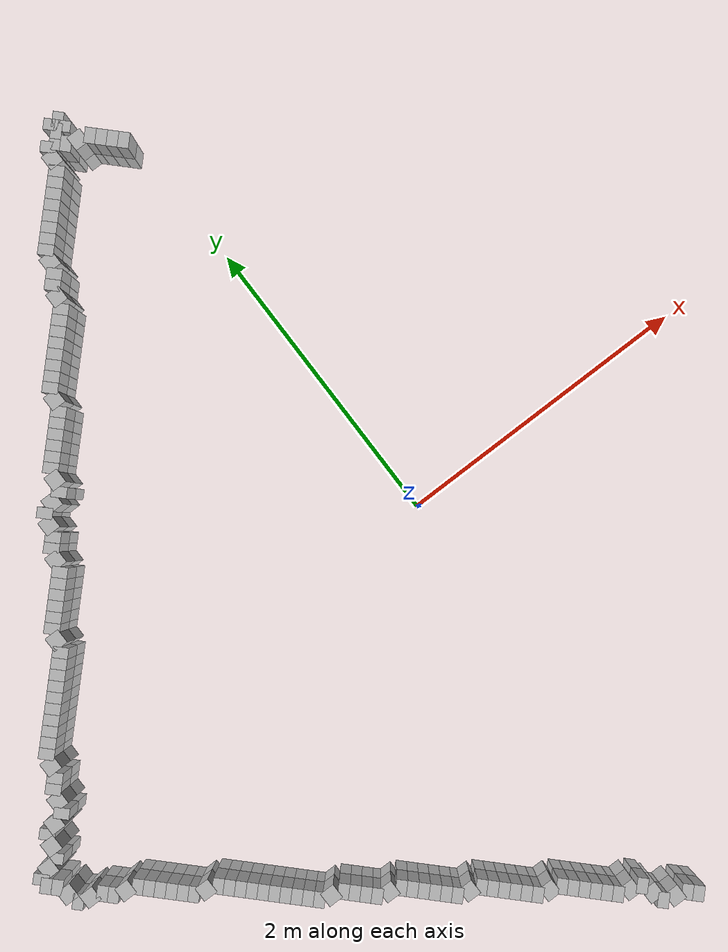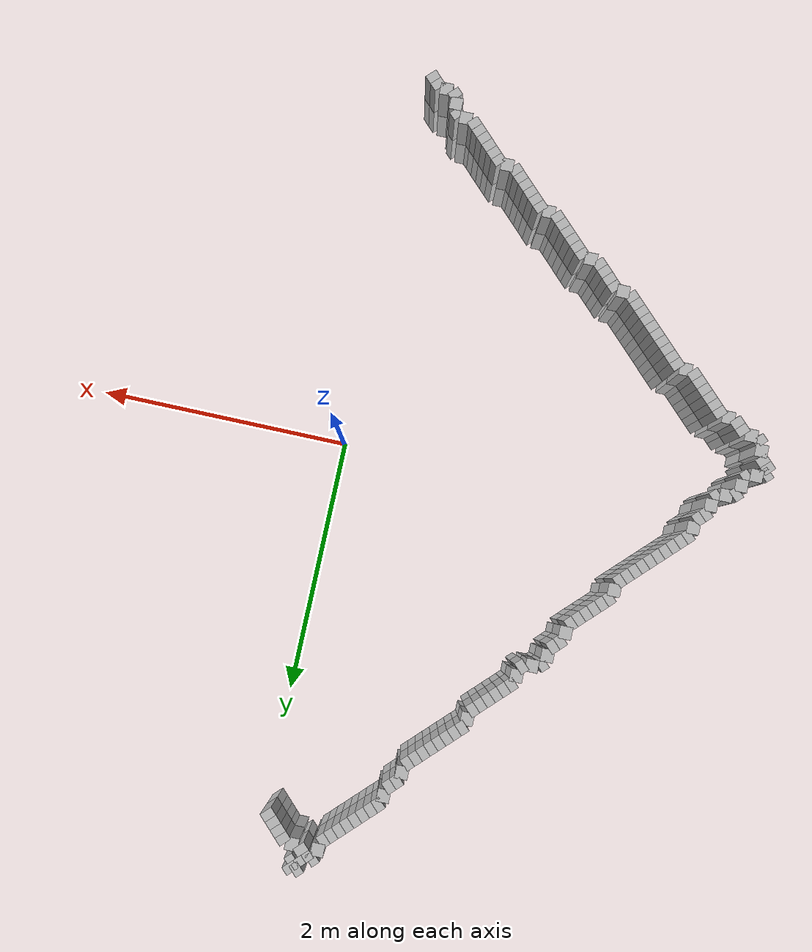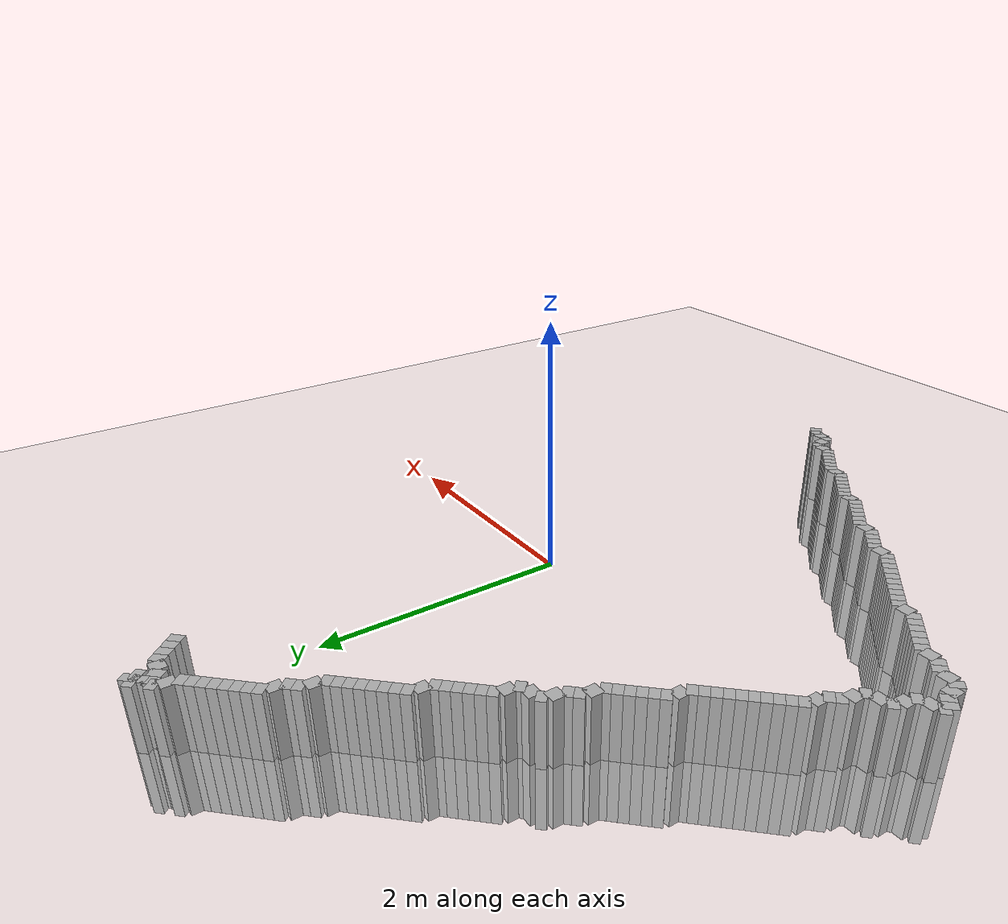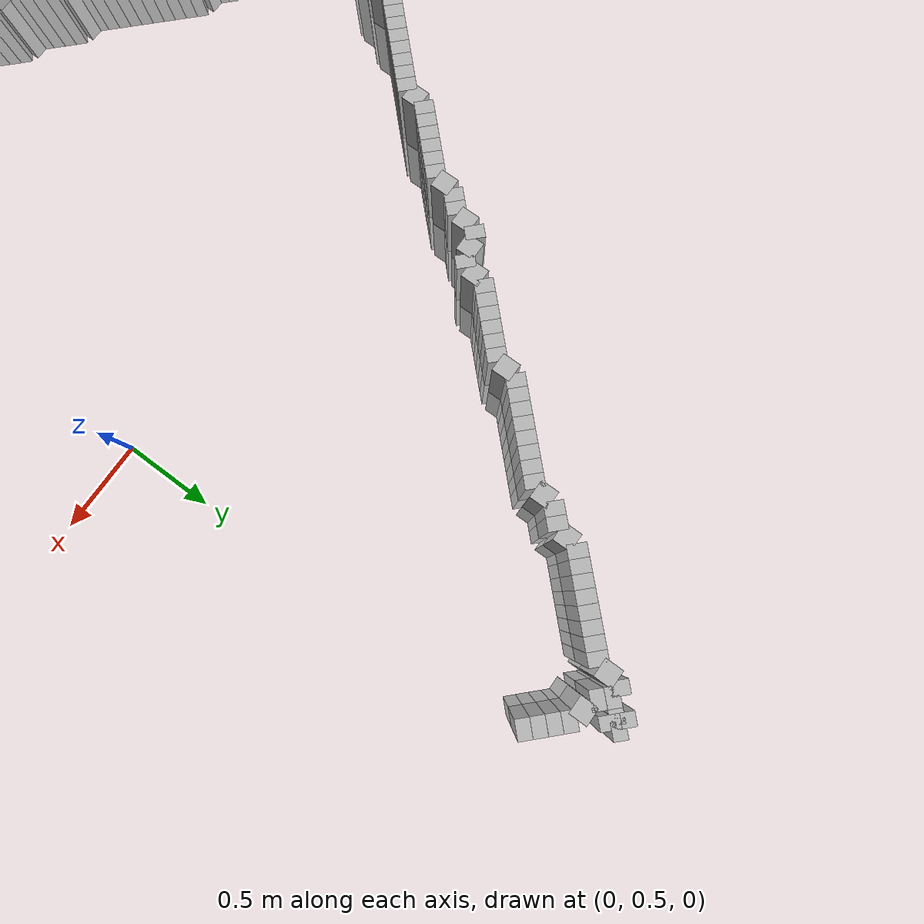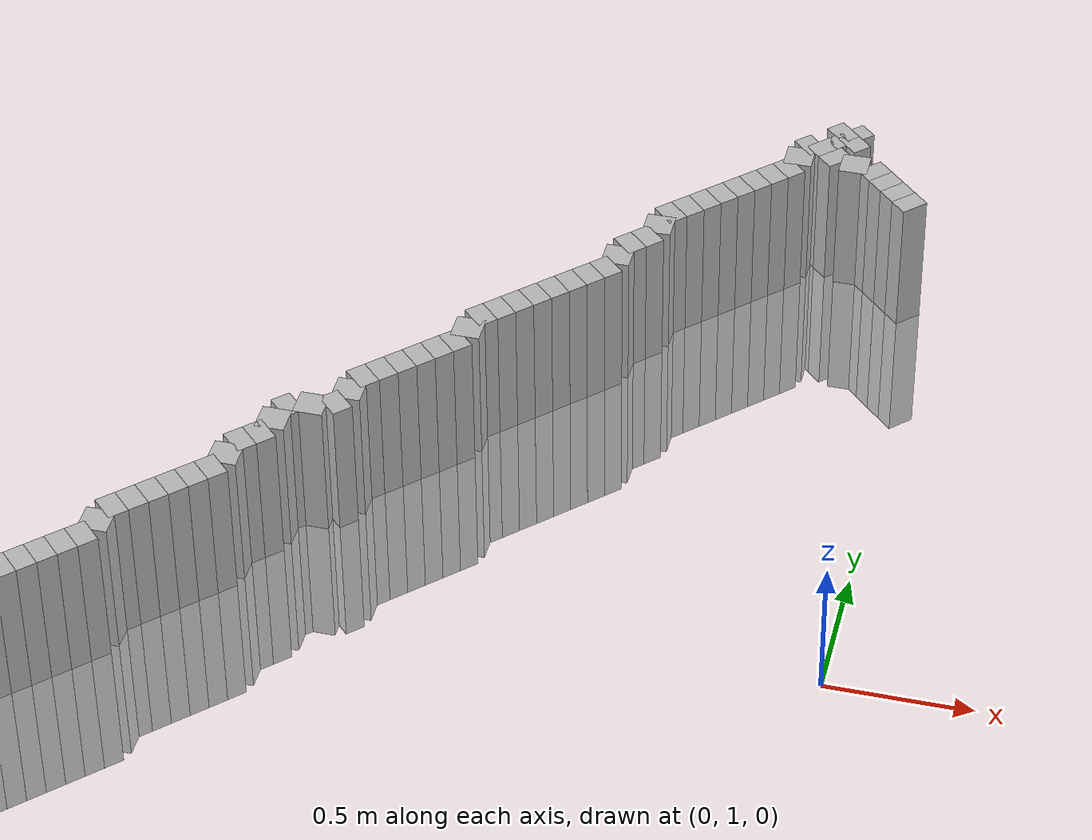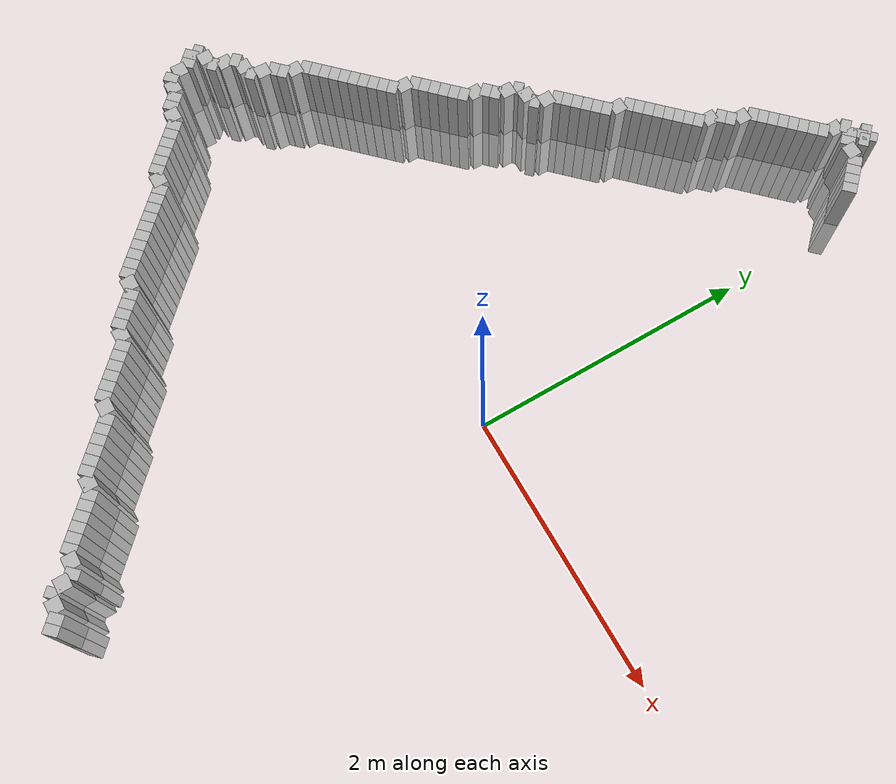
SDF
<sdf version="1.6">
 <world name="default">
  <include><uri>model://ground_plane</uri></include>
  <include><uri>model://sun</uri></include>
  <model name="wall_6">
   <static>true</static>
   <pose>-0.0750 -2.9750 0 0 0 2.3562</pose>
   <link name="link">
    <visual name="vis"><geometry><box><size>0.0707 0.10 1.00</size></box></geometry></visual>
    <collision name="col"><geometry><box><size>0.0707 0.10 1.00</size></box></geometry></collision>
   </link>
  </model>
  <model name="wall_7">
   <static>true</static>
   <pose>-0.1250 -2.9250 0 0 0 2.3562</pose>
   <link name="link">
    <visual name="vis"><geometry><box><size>0.0707 0.10 1.00</size></box></geometry></visual>
    <collision name="col"><geometry><box><size>0.0707 0.10 1.00</size></box></geometry></collision>
   </link>
  </model>
  <model name="wall_8">
   <static>true</static>
   <pose>-0.2000 -2.9000 0 0 0 3.1416</pose>
   <link name="link">
    <visual name="vis"><geometry><box><size>0.1000 0.10 1.00</size></box></geometry></visual>
    <collision name="col"><geometry><box><size>0.1000 0.10 1.00</size></box></geometry></collision>
   </link>
  </model>
  <model name="wall_9">
   <static>true</static>
   <pose>-0.2750 -2.8750 0 0 0 2.3562</pose>
   <link name="link">
    <visual name="vis"><geometry><box><size>0.0707 0.10 1.00</size></box></geometry></visual>
    <collision name="col"><geometry><box><size>0.0707 0.10 1.00</size></box></geometry></collision>
   </link>
  </model>
  <model name="wall_10">
   <static>true</static>
   <pose>-0.3000 -2.8000 0 0 0 1.5708</pose>
   <link name="link">
    <visual name="vis"><geometry><box><size>0.1000 0.10 1.00</size></box></geometry></visual>
    <collision name="col"><geometry><box><size>0.1000 0.10 1.00</size></box></geometry></collision>
   </link>
  </model>
  <model name="wall_11">
   <static>true</static>
   <pose>-0.3250 -2.7250 0 0 0 2.3562</pose>
   <link name="link">
    <visual name="vis"><geometry><box><size>0.0707 0.10 1.00</size></box></geometry></visual>
    <collision name="col"><geometry><box><size>0.0707 0.10 1.00</size></box></geometry></collision>
   </link>
  </model>
  <model name="wall_12">
   <static>true</static>
   <pose>-0.4000 -2.7000 0 0 0 3.1416</pose>
   <link name="link">
    <visual name="vis"><geometry><box><size>0.1000 0.10 1.00</size></box></geometry></visual>
    <collision name="col"><geometry><box><size>0.1000 0.10 1.00</size></box></geometry></collision>
   </link>
  </model>
  <model name="wall_13">
   <static>true</static>
   <pose>-0.4750 -2.6750 0 0 0 2.3562</pose>
   <link name="link">
    <visual name="vis"><geometry><box><size>0.0707 0.10 1.00</size></box></geometry></visual>
    <collision name="col"><geometry><box><size>0.0707 0.10 1.00</size></box></geometry></collision>
   </link>
  </model>
  <model name="wall_14">
   <static>true</static>
   <pose>-0.5250 -2.6250 0 0 0 2.3562</pose>
   <link name="link">
    <visual name="vis"><geometry><box><size>0.0707 0.10 1.00</size></box></geometry></visual>
    <collision name="col"><geometry><box><size>0.0707 0.10 1.00</size></box></geometry></collision>
   </link>
  </model>
  <model name="wall_15">
   <static>true</static>
   <pose>-0.5750 -2.5750 0 0 0 2.3562</pose>
   <link name="link">
    <visual name="vis"><geometry><box><size>0.0707 0.10 1.00</size></box></geometry></visual>
    <collision name="col"><geometry><box><size>0.0707 0.10 1.00</size></box></geometry></collision>
   </link>
  </model>
  <model name="wall_16">
   <static>true</static>
   <pose>-0.6250 -2.5250 0 0 0 2.3562</pose>
   <link name="link">
    <visual name="vis"><geometry><box><size>0.0707 0.10 1.00</size></box></geometry></visual>
    <collision name="col"><geometry><box><size>0.0707 0.10 1.00</size></box></geometry></collision>
   </link>
  </model>
  <model name="wall_17">
   <static>true</static>
   <pose>-0.6750 -2.4750 0 0 0 2.3562</pose>
   <link name="link">
    <visual name="vis"><geometry><box><size>0.0707 0.10 1.00</size></box></geometry></visual>
    <collision name="col"><geometry><box><size>0.0707 0.10 1.00</size></box></geometry></collision>
   </link>
  </model>
  <model name="wall_18">
   <static>true</static>
   <pose>-0.7250 -2.4250 0 0 0 2.3562</pose>
   <link name="link">
    <visual name="vis"><geometry><box><size>0.0707 0.10 1.00</size></box></geometry></visual>
    <collision name="col"><geometry><box><size>0.0707 0.10 1.00</size></box></geometry></collision>
   </link>
  </model>
  <model name="wall_19">
   <static>true</static>
   <pose>-0.8000 -2.4000 0 0 0 3.1416</pose>
   <link name="link">
    <visual name="vis"><geometry><box><size>0.1000 0.10 1.00</size></box></geometry></visual>
    <collision name="col"><geometry><box><size>0.1000 0.10 1.00</size></box></geometry></collision>
   </link>
  </model>
  <model name="wall_20">
   <static>true</static>
   <pose>-0.8750 -2.3750 0 0 0 2.3562</pose>
   <link name="link">
    <visual name="vis"><geometry><box><size>0.0707 0.10 1.00</size></box></geometry></visual>
    <collision name="col"><geometry><box><size>0.0707 0.10 1.00</size></box></geometry></collision>
   </link>
  </model>
  <model name="wall_21">
   <static>true</static>
   <pose>-0.9250 -2.3250 0 0 0 2.3562</pose>
   <link name="link">
    <visual name="vis"><geometry><box><size>0.0707 0.10 1.00</size></box></geometry></visual>
    <collision name="col"><geometry><box><size>0.0707 0.10 1.00</size></box></geometry></collision>
   </link>
  </model>
  <model name="wall_22">
   <static>true</static>
   <pose>-0.9750 -2.2750 0 0 0 2.3562</pose>
   <link name="link">
    <visual name="vis"><geometry><box><size>0.0707 0.10 1.00</size></box></geometry></visual>
    <collision name="col"><geometry><box><size>0.0707 0.10 1.00</size></box></geometry></collision>
   </link>
  </model>
  <model name="wall_23">
   <static>true</static>
   <pose>-1.0250 -2.2250 0 0 0 2.3562</pose>
   <link name="link">
    <visual name="vis"><geometry><box><size>0.0707 0.10 1.00</size></box></geometry></visual>
    <collision name="col"><geometry><box><size>0.0707 0.10 1.00</size></box></geometry></collision>
   </link>
  </model>
  <model name="wall_24">
   <static>true</static>
   <pose>-1.0750 -2.1750 0 0 0 2.3562</pose>
   <link name="link">
    <visual name="vis"><geometry><box><size>0.0707 0.10 1.00</size></box></geometry></visual>
    <collision name="col"><geometry><box><size>0.0707 0.10 1.00</size></box></geometry></collision>
   </link>
  </model>
  <model name="wall_25">
   <static>true</static>
   <pose>-1.1250 -2.1250 0 0 0 2.3562</pose>
   <link name="link">
    <visual name="vis"><geometry><box><size>0.0707 0.10 1.00</size></box></geometry></visual>
    <collision name="col"><geometry><box><size>0.0707 0.10 1.00</size></box></geometry></collision>
   </link>
  </model>
  <model name="wall_26">
   <static>true</static>
   <pose>-1.2000 -2.1000 0 0 0 3.1416</pose>
   <link name="link">
    <visual name="vis"><geometry><box><size>0.1000 0.10 1.00</size></box></geometry></visual>
    <collision name="col"><geometry><box><size>0.1000 0.10 1.00</size></box></geometry></collision>
   </link>
  </model>
  <model name="wall_27">
   <static>true</static>
   <pose>-1.2750 -2.0750 0 0 0 2.3562</pose>
   <link name="link">
    <visual name="vis"><geometry><box><size>0.0707 0.10 1.00</size></box></geometry></visual>
    <collision name="col"><geometry><box><size>0.0707 0.10 1.00</size></box></geometry></collision>
   </link>
  </model>
  <model name="wall_28">
   <static>true</static>
   <pose>-1.3250 -2.0250 0 0 0 2.3562</pose>
   <link name="link">
    <visual name="vis"><geometry><box><size>0.0707 0.10 1.00</size></box></geometry></visual>
    <collision name="col"><geometry><box><size>0.0707 0.10 1.00</size></box></geometry></collision>
   </link>
  </model>
  <model name="wall_29">
   <static>true</static>
   <pose>-1.3750 -1.9750 0 0 0 2.3562</pose>
   <link name="link">
    <visual name="vis"><geometry><box><size>0.0707 0.10 1.00</size></box></geometry></visual>
    <collision name="col"><geometry><box><size>0.0707 0.10 1.00</size></box></geometry></collision>
   </link>
  </model>
  <model name="wall_30">
   <static>true</static>
   <pose>-1.4250 -1.9250 0 0 0 2.3562</pose>
   <link name="link">
    <visual name="vis"><geometry><box><size>0.0707 0.10 1.00</size></box></geometry></visual>
    <collision name="col"><geometry><box><size>0.0707 0.10 1.00</size></box></geometry></collision>
   </link>
  </model>
  <model name="wall_31">
   <static>true</static>
   <pose>-1.4750 -1.8750 0 0 0 2.3562</pose>
   <link name="link">
    <visual name="vis"><geometry><box><size>0.0707 0.10 1.00</size></box></geometry></visual>
    <collision name="col"><geometry><box><size>0.0707 0.10 1.00</size></box></geometry></collision>
   </link>
  </model>
  <model name="wall_32">
   <static>true</static>
   <pose>-1.5250 -1.8250 0 0 0 2.3562</pose>
   <link name="link">
    <visual name="vis"><geometry><box><size>0.0707 0.10 1.00</size></box></geometry></visual>
    <collision name="col"><geometry><box><size>0.0707 0.10 1.00</size></box></geometry></collision>
   </link>
  </model>
  <model name="wall_33">
   <static>true</static>
   <pose>-1.6000 -1.8000 0 0 0 3.1416</pose>
   <link name="link">
    <visual name="vis"><geometry><box><size>0.1000 0.10 1.00</size></box></geometry></visual>
    <collision name="col"><geometry><box><size>0.1000 0.10 1.00</size></box></geometry></collision>
   </link>
  </model>
  <model name="wall_34">
   <static>true</static>
   <pose>-1.6750 -1.7750 0 0 0 2.3562</pose>
   <link name="link">
    <visual name="vis"><geometry><box><size>0.0707 0.10 1.00</size></box></geometry></visual>
    <collision name="col"><geometry><box><size>0.0707 0.10 1.00</size></box></geometry></collision>
   </link>
  </model>
  <model name="wall_35">
   <static>true</static>
   <pose>-1.7250 -1.7250 0 0 0 2.3562</pose>
   <link name="link">
    <visual name="vis"><geometry><box><size>0.0707 0.10 1.00</size></box></geometry></visual>
    <collision name="col"><geometry><box><size>0.0707 0.10 1.00</size></box></geometry></collision>
   </link>
  </model>
  <model name="wall_36">
   <static>true</static>
   <pose>-1.7750 -1.6750 0 0 0 2.3562</pose>
   <link name="link">
    <visual name="vis"><geometry><box><size>0.0707 0.10 1.00</size></box></geometry></visual>
    <collision name="col"><geometry><box><size>0.0707 0.10 1.00</size></box></geometry></collision>
   </link>
  </model>
  <model name="wall_37">
   <static>true</static>
   <pose>-1.8250 -1.6250 0 0 0 2.3562</pose>
   <link name="link">
    <visual name="vis"><geometry><box><size>0.0707 0.10 1.00</size></box></geometry></visual>
    <collision name="col"><geometry><box><size>0.0707 0.10 1.00</size></box></geometry></collision>
   </link>
  </model>
  <model name="wall_38">
   <static>true</static>
   <pose>-1.9000 -1.6000 0 0 0 3.1416</pose>
   <link name="link">
    <visual name="vis"><geometry><box><size>0.1000 0.10 1.00</size></box></geometry></visual>
    <collision name="col"><geometry><box><size>0.1000 0.10 1.00</size></box></geometry></collision>
   </link>
  </model>
  <model name="wall_39">
   <static>true</static>
   <pose>-1.9750 -1.5750 0 0 0 2.3562</pose>
   <link name="link">
    <visual name="vis"><geometry><box><size>0.0707 0.10 1.00</size></box></geometry></visual>
    <collision name="col"><geometry><box><size>0.0707 0.10 1.00</size></box></geometry></collision>
   </link>
  </model>
  <model name="wall_40">
   <static>true</static>
   <pose>-2.0250 -1.5250 0 0 0 2.3562</pose>
   <link name="link">
    <visual name="vis"><geometry><box><size>0.0707 0.10 1.00</size></box></geometry></visual>
    <collision name="col"><geometry><box><size>0.0707 0.10 1.00</size></box></geometry></collision>
   </link>
  </model>
  <model name="wall_41">
   <static>true</static>
   <pose>-2.0750 -1.4750 0 0 0 2.3562</pose>
   <link name="link">
    <visual name="vis"><geometry><box><size>0.0707 0.10 1.00</size></box></geometry></visual>
    <collision name="col"><geometry><box><size>0.0707 0.10 1.00</size></box></geometry></collision>
   </link>
  </model>
  <model name="wall_42">
   <static>true</static>
   <pose>-2.1250 -1.4250 0 0 0 2.3562</pose>
   <link name="link">
    <visual name="vis"><geometry><box><size>0.0707 0.10 1.00</size></box></geometry></visual>
    <collision name="col"><geometry><box><size>0.0707 0.10 1.00</size></box></geometry></collision>
   </link>
  </model>
  <model name="wall_43">
   <static>true</static>
   <pose>-2.1750 -1.3750 0 0 0 2.3562</pose>
   <link name="link">
    <visual name="vis"><geometry><box><size>0.0707 0.10 1.00</size></box></geometry></visual>
    <collision name="col"><geometry><box><size>0.0707 0.10 1.00</size></box></geometry></collision>
   </link>
  </model>
  <model name="wall_44">
   <static>true</static>
   <pose>-2.2250 -1.3250 0 0 0 2.3562</pose>
   <link name="link">
    <visual name="vis"><geometry><box><size>0.0707 0.10 1.00</size></box></geometry></visual>
    <collision name="col"><geometry><box><size>0.0707 0.10 1.00</size></box></geometry></collision>
   </link>
  </model>
  <model name="wall_45">
   <static>true</static>
   <pose>-2.2750 -1.2750 0 0 0 2.3562</pose>
   <link name="link">
    <visual name="vis"><geometry><box><size>0.0707 0.10 1.00</size></box></geometry></visual>
    <collision name="col"><geometry><box><size>0.0707 0.10 1.00</size></box></geometry></collision>
   </link>
  </model>
  <model name="wall_46">
   <static>true</static>
   <pose>-2.3250 -1.2250 0 0 0 2.3562</pose>
   <link name="link">
    <visual name="vis"><geometry><box><size>0.0707 0.10 1.00</size></box></geometry></visual>
    <collision name="col"><geometry><box><size>0.0707 0.10 1.00</size></box></geometry></collision>
   </link>
  </model>
  <model name="wall_47">
   <static>true</static>
   <pose>-2.3750 -1.1750 0 0 0 2.3562</pose>
   <link name="link">
    <visual name="vis"><geometry><box><size>0.0707 0.10 1.00</size></box></geometry></visual>
    <collision name="col"><geometry><box><size>0.0707 0.10 1.00</size></box></geometry></collision>
   </link>
  </model>
  <model name="wall_48">
   <static>true</static>
   <pose>-2.4250 -1.1250 0 0 0 2.3562</pose>
   <link name="link">
    <visual name="vis"><geometry><box><size>0.0707 0.10 1.00</size></box></geometry></visual>
    <collision name="col"><geometry><box><size>0.0707 0.10 1.00</size></box></geometry></collision>
   </link>
  </model>
  <model name="wall_49">
   <static>true</static>
   <pose>-2.5000 -1.1000 0 0 0 3.1416</pose>
   <link name="link">
    <visual name="vis"><geometry><box><size>0.1000 0.10 1.00</size></box></geometry></visual>
    <collision name="col"><geometry><box><size>0.1000 0.10 1.00</size></box></geometry></collision>
   </link>
  </model>
  <model name="wall_50">
   <static>true</static>
   <pose>-2.5750 -1.0750 0 0 0 2.3562</pose>
   <link name="link">
    <visual name="vis"><geometry><box><size>0.0707 0.10 1.00</size></box></geometry></visual>
    <collision name="col"><geometry><box><size>0.0707 0.10 1.00</size></box></geometry></collision>
   </link>
  </model>
  <model name="wall_51">
   <static>true</static>
   <pose>-2.6250 -1.0250 0 0 0 2.3562</pose>
   <link name="link">
    <visual name="vis"><geometry><box><size>0.0707 0.10 1.00</size></box></geometry></visual>
    <collision name="col"><geometry><box><size>0.0707 0.10 1.00</size></box></geometry></collision>
   </link>
  </model>
  <model name="wall_52">
   <static>true</static>
   <pose>-2.6750 -0.9750 0 0 0 2.3562</pose>
   <link name="link">
    <visual name="vis"><geometry><box><size>0.0707 0.10 1.00</size></box></geometry></visual>
    <collision name="col"><geometry><box><size>0.0707 0.10 1.00</size></box></geometry></collision>
   </link>
  </model>
  <model name="wall_53">
   <static>true</static>
   <pose>-2.7250 -0.9250 0 0 0 2.3562</pose>
   <link name="link">
    <visual name="vis"><geometry><box><size>0.0707 0.10 1.00</size></box></geometry></visual>
    <collision name="col"><geometry><box><size>0.0707 0.10 1.00</size></box></geometry></collision>
   </link>
  </model>
  <model name="wall_54">
   <static>true</static>
   <pose>-2.7750 -0.8750 0 0 0 2.3562</pose>
   <link name="link">
    <visual name="vis"><geometry><box><size>0.0707 0.10 1.00</size></box></geometry></visual>
    <collision name="col"><geometry><box><size>0.0707 0.10 1.00</size></box></geometry></collision>
   </link>
  </model>
  <model name="wall_55">
   <static>true</static>
   <pose>-2.8250 -0.8250 0 0 0 2.3562</pose>
   <link name="link">
    <visual name="vis"><geometry><box><size>0.0707 0.10 1.00</size></box></geometry></visual>
    <collision name="col"><geometry><box><size>0.0707 0.10 1.00</size></box></geometry></collision>
   </link>
  </model>
  <model name="wall_56">
   <static>true</static>
   <pose>-2.9000 -0.8000 0 0 0 3.1416</pose>
   <link name="link">
    <visual name="vis"><geometry><box><size>0.1000 0.10 1.00</size></box></geometry></visual>
    <collision name="col"><geometry><box><size>0.1000 0.10 1.00</size></box></geometry></collision>
   </link>
  </model>
  <model name="wall_57">
   <static>true</static>
   <pose>-2.9750 -0.7750 0 0 0 2.3562</pose>
   <link name="link">
    <visual name="vis"><geometry><box><size>0.0707 0.10 1.00</size></box></geometry></visual>
    <collision name="col"><geometry><box><size>0.0707 0.10 1.00</size></box></geometry></collision>
   </link>
  </model>
  <model name="wall_58">
   <static>true</static>
   <pose>-3.0250 -0.7250 0 0 0 2.3562</pose>
   <link name="link">
    <visual name="vis"><geometry><box><size>0.0707 0.10 1.00</size></box></geometry></visual>
    <collision name="col"><geometry><box><size>0.0707 0.10 1.00</size></box></geometry></collision>
   </link>
  </model>
  <model name="wall_59">
   <static>true</static>
   <pose>-3.1000 -0.7000 0 0 0 3.1416</pose>
   <link name="link">
    <visual name="vis"><geometry><box><size>0.1000 0.10 1.00</size></box></geometry></visual>
    <collision name="col"><geometry><box><size>0.1000 0.10 1.00</size></box></geometry></collision>
   </link>
  </model>
  <model name="wall_60">
   <static>true</static>
   <pose>-3.1750 -0.6750 0 0 0 2.3562</pose>
   <link name="link">
    <visual name="vis"><geometry><box><size>0.0707 0.10 1.00</size></box></geometry></visual>
    <collision name="col"><geometry><box><size>0.0707 0.10 1.00</size></box></geometry></collision>
   </link>
  </model>
  <model name="wall_61">
   <static>true</static>
   <pose>-3.2000 -0.6000 0 0 0 1.5708</pose>
   <link name="link">
    <visual name="vis"><geometry><box><size>0.1000 0.10 1.00</size></box></geometry></visual>
    <collision name="col"><geometry><box><size>0.1000 0.10 1.00</size></box></geometry></collision>
   </link>
  </model>
  <model name="wall_62">
   <static>true</static>
   <pose>-3.2250 -0.5250 0 0 0 2.3562</pose>
   <link name="link">
    <visual name="vis"><geometry><box><size>0.0707 0.10 1.00</size></box></geometry></visual>
    <collision name="col"><geometry><box><size>0.0707 0.10 1.00</size></box></geometry></collision>
   </link>
  </model>
  <model name="wall_63">
   <static>true</static>
   <pose>-3.2750 -0.4750 0 0 0 2.3562</pose>
   <link name="link">
    <visual name="vis"><geometry><box><size>0.0707 0.10 1.00</size></box></geometry></visual>
    <collision name="col"><geometry><box><size>0.0707 0.10 1.00</size></box></geometry></collision>
   </link>
  </model>
  <model name="wall_64">
   <static>true</static>
   <pose>-3.2750 -0.4250 0 0 0 0.7854</pose>
   <link name="link">
    <visual name="vis"><geometry><box><size>0.0707 0.10 1.00</size></box></geometry></visual>
    <collision name="col"><geometry><box><size>0.0707 0.10 1.00</size></box></geometry></collision>
   </link>
  </model>
  <model name="wall_65">
   <static>true</static>
   <pose>-3.2000 -0.4000 0 0 0 0.0000</pose>
   <link name="link">
    <visual name="vis"><geometry><box><size>0.1000 0.10 1.00</size></box></geometry></visual>
    <collision name="col"><geometry><box><size>0.1000 0.10 1.00</size></box></geometry></collision>
   </link>
  </model>
  <model name="wall_66">
   <static>true</static>
   <pose>-3.1250 -0.3750 0 0 0 0.7854</pose>
   <link name="link">
    <visual name="vis"><geometry><box><size>0.0707 0.10 1.00</size></box></geometry></visual>
    <collision name="col"><geometry><box><size>0.0707 0.10 1.00</size></box></geometry></collision>
   </link>
  </model>
  <model name="wall_67">
   <static>true</static>
   <pose>-3.1000 -0.3000 0 0 0 1.5708</pose>
   <link name="link">
    <visual name="vis"><geometry><box><size>0.1000 0.10 1.00</size></box></geometry></visual>
    <collision name="col"><geometry><box><size>0.1000 0.10 1.00</size></box></geometry></collision>
   </link>
  </model>
  <model name="wall_68">
   <static>true</static>
   <pose>-3.0750 -0.2250 0 0 0 0.7854</pose>
   <link name="link">
    <visual name="vis"><geometry><box><size>0.0707 0.10 1.00</size></box></geometry></visual>
    <collision name="col"><geometry><box><size>0.0707 0.10 1.00</size></box></geometry></collision>
   </link>
  </model>
  <model name="wall_69">
   <static>true</static>
   <pose>-3.0000 -0.2000 0 0 0 0.0000</pose>
   <link name="link">
    <visual name="vis"><geometry><box><size>0.1000 0.10 1.00</size></box></geometry></visual>
    <collision name="col"><geometry><box><size>0.1000 0.10 1.00</size></box></geometry></collision>
   </link>
  </model>
  <model name="wall_70">
   <static>true</static>
   <pose>-2.9250 -0.1750 0 0 0 0.7854</pose>
   <link name="link">
    <visual name="vis"><geometry><box><size>0.0707 0.10 1.00</size></box></geometry></visual>
    <collision name="col"><geometry><box><size>0.0707 0.10 1.00</size></box></geometry></collision>
   </link>
  </model>
  <model name="wall_71">
   <static>true</static>
   <pose>-2.9000 -0.1000 0 0 0 1.5708</pose>
   <link name="link">
    <visual name="vis"><geometry><box><size>0.1000 0.10 1.00</size></box></geometry></visual>
    <collision name="col"><geometry><box><size>0.1000 0.10 1.00</size></box></geometry></collision>
   </link>
  </model>
  <model name="wall_72">
   <static>true</static>
   <pose>-2.8750 -0.0250 0 0 0 0.7854</pose>
   <link name="link">
    <visual name="vis"><geometry><box><size>0.0707 0.10 1.00</size></box></geometry></visual>
    <collision name="col"><geometry><box><size>0.0707 0.10 1.00</size></box></geometry></collision>
   </link>
  </model>
  <model name="wall_73">
   <static>true</static>
   <pose>-2.8250 0.0250 0 0 0 0.7854</pose>
   <link name="link">
    <visual name="vis"><geometry><box><size>0.0707 0.10 1.00</size></box></geometry></visual>
    <collision name="col"><geometry><box><size>0.0707 0.10 1.00</size></box></geometry></collision>
   </link>
  </model>
  <model name="wall_74">
   <static>true</static>
   <pose>-2.8000 0.1000 0 0 0 1.5708</pose>
   <link name="link">
    <visual name="vis"><geometry><box><size>0.1000 0.10 1.00</size></box></geometry></visual>
    <collision name="col"><geometry><box><size>0.1000 0.10 1.00</size></box></geometry></collision>
   </link>
  </model>
  <model name="wall_75">
   <static>true</static>
   <pose>-2.7750 0.1750 0 0 0 0.7854</pose>
   <link name="link">
    <visual name="vis"><geometry><box><size>0.0707 0.10 1.00</size></box></geometry></visual>
    <collision name="col"><geometry><box><size>0.0707 0.10 1.00</size></box></geometry></collision>
   </link>
  </model>
  <model name="wall_76">
   <static>true</static>
   <pose>-2.7250 0.2250 0 0 0 0.7854</pose>
   <link name="link">
    <visual name="vis"><geometry><box><size>0.0707 0.10 1.00</size></box></geometry></visual>
    <collision name="col"><geometry><box><size>0.0707 0.10 1.00</size></box></geometry></collision>
   </link>
  </model>
  <model name="wall_77">
   <static>true</static>
   <pose>-2.6750 0.2750 0 0 0 0.7854</pose>
   <link name="link">
    <visual name="vis"><geometry><box><size>0.0707 0.10 1.00</size></box></geometry></visual>
    <collision name="col"><geometry><box><size>0.0707 0.10 1.00</size></box></geometry></collision>
   </link>
  </model>
  <model name="wall_78">
   <static>true</static>
   <pose>-2.6250 0.3250 0 0 0 0.7854</pose>
   <link name="link">
    <visual name="vis"><geometry><box><size>0.0707 0.10 1.00</size></box></geometry></visual>
    <collision name="col"><geometry><box><size>0.0707 0.10 1.00</size></box></geometry></collision>
   </link>
  </model>
  <model name="wall_79">
   <static>true</static>
   <pose>-2.5750 0.3750 0 0 0 0.7854</pose>
   <link name="link">
    <visual name="vis"><geometry><box><size>0.0707 0.10 1.00</size></box></geometry></visual>
    <collision name="col"><geometry><box><size>0.0707 0.10 1.00</size></box></geometry></collision>
   </link>
  </model>
  <model name="wall_80">
   <static>true</static>
   <pose>-2.5250 0.4250 0 0 0 0.7854</pose>
   <link name="link">
    <visual name="vis"><geometry><box><size>0.0707 0.10 1.00</size></box></geometry></visual>
    <collision name="col"><geometry><box><size>0.0707 0.10 1.00</size></box></geometry></collision>
   </link>
  </model>
  <model name="wall_81">
   <static>true</static>
   <pose>-2.4750 0.4750 0 0 0 0.7854</pose>
   <link name="link">
    <visual name="vis"><geometry><box><size>0.0707 0.10 1.00</size></box></geometry></visual>
    <collision name="col"><geometry><box><size>0.0707 0.10 1.00</size></box></geometry></collision>
   </link>
  </model>
  <model name="wall_82">
   <static>true</static>
   <pose>-2.4250 0.5250 0 0 0 0.7854</pose>
   <link name="link">
    <visual name="vis"><geometry><box><size>0.0707 0.10 1.00</size></box></geometry></visual>
    <collision name="col"><geometry><box><size>0.0707 0.10 1.00</size></box></geometry></collision>
   </link>
  </model>
  <model name="wall_83">
   <static>true</static>
   <pose>-2.3750 0.5750 0 0 0 0.7854</pose>
   <link name="link">
    <visual name="vis"><geometry><box><size>0.0707 0.10 1.00</size></box></geometry></visual>
    <collision name="col"><geometry><box><size>0.0707 0.10 1.00</size></box></geometry></collision>
   </link>
  </model>
  <model name="wall_84">
   <static>true</static>
   <pose>-2.3250 0.6250 0 0 0 0.7854</pose>
   <link name="link">
    <visual name="vis"><geometry><box><size>0.0707 0.10 1.00</size></box></geometry></visual>
    <collision name="col"><geometry><box><size>0.0707 0.10 1.00</size></box></geometry></collision>
   </link>
  </model>
  <model name="wall_85">
   <static>true</static>
   <pose>-2.3000 0.7000 0 0 0 1.5708</pose>
   <link name="link">
    <visual name="vis"><geometry><box><size>0.1000 0.10 1.00</size></box></geometry></visual>
    <collision name="col"><geometry><box><size>0.1000 0.10 1.00</size></box></geometry></collision>
   </link>
  </model>
  <model name="wall_86">
   <static>true</static>
   <pose>-2.2750 0.7750 0 0 0 0.7854</pose>
   <link name="link">
    <visual name="vis"><geometry><box><size>0.0707 0.10 1.00</size></box></geometry></visual>
    <collision name="col"><geometry><box><size>0.0707 0.10 1.00</size></box></geometry></collision>
   </link>
  </model>
  <model name="wall_87">
   <static>true</static>
   <pose>-2.2250 0.8250 0 0 0 0.7854</pose>
   <link name="link">
    <visual name="vis"><geometry><box><size>0.0707 0.10 1.00</size></box></geometry></visual>
    <collision name="col"><geometry><box><size>0.0707 0.10 1.00</size></box></geometry></collision>
   </link>
  </model>
  <model name="wall_88">
   <static>true</static>
   <pose>-2.1750 0.8750 0 0 0 0.7854</pose>
   <link name="link">
    <visual name="vis"><geometry><box><size>0.0707 0.10 1.00</size></box></geometry></visual>
    <collision name="col"><geometry><box><size>0.0707 0.10 1.00</size></box></geometry></collision>
   </link>
  </model>
  <model name="wall_89">
   <static>true</static>
   <pose>-2.1250 0.9250 0 0 0 0.7854</pose>
   <link name="link">
    <visual name="vis"><geometry><box><size>0.0707 0.10 1.00</size></box></geometry></visual>
    <collision name="col"><geometry><box><size>0.0707 0.10 1.00</size></box></geometry></collision>
   </link>
  </model>
  <model name="wall_90">
   <static>true</static>
   <pose>-2.0750 0.9750 0 0 0 0.7854</pose>
   <link name="link">
    <visual name="vis"><geometry><box><size>0.0707 0.10 1.00</size></box></geometry></visual>
    <collision name="col"><geometry><box><size>0.0707 0.10 1.00</size></box></geometry></collision>
   </link>
  </model>
  <model name="wall_91">
   <static>true</static>
   <pose>-2.0250 1.0250 0 0 0 0.7854</pose>
   <link name="link">
    <visual name="vis"><geometry><box><size>0.0707 0.10 1.00</size></box></geometry></visual>
    <collision name="col"><geometry><box><size>0.0707 0.10 1.00</size></box></geometry></collision>
   </link>
  </model>
  <model name="wall_92">
   <static>true</static>
   <pose>-2.0000 1.1000 0 0 0 1.5708</pose>
   <link name="link">
    <visual name="vis"><geometry><box><size>0.1000 0.10 1.00</size></box></geometry></visual>
    <collision name="col"><geometry><box><size>0.1000 0.10 1.00</size></box></geometry></collision>
   </link>
  </model>
  <model name="wall_93">
   <static>true</static>
   <pose>-1.9750 1.1750 0 0 0 0.7854</pose>
   <link name="link">
    <visual name="vis"><geometry><box><size>0.0707 0.10 1.00</size></box></geometry></visual>
    <collision name="col"><geometry><box><size>0.0707 0.10 1.00</size></box></geometry></collision>
   </link>
  </model>
  <model name="wall_94">
   <static>true</static>
   <pose>-1.9250 1.2250 0 0 0 0.7854</pose>
   <link name="link">
    <visual name="vis"><geometry><box><size>0.0707 0.10 1.00</size></box></geometry></visual>
    <collision name="col"><geometry><box><size>0.0707 0.10 1.00</size></box></geometry></collision>
   </link>
  </model>
  <model name="wall_95">
   <static>true</static>
   <pose>-1.9000 1.3000 0 0 0 1.5708</pose>
   <link name="link">
    <visual name="vis"><geometry><box><size>0.1000 0.10 1.00</size></box></geometry></visual>
    <collision name="col"><geometry><box><size>0.1000 0.10 1.00</size></box></geometry></collision>
   </link>
  </model>
  <model name="wall_96">
   <static>true</static>
   <pose>-1.8750 1.3750 0 0 0 0.7854</pose>
   <link name="link">
    <visual name="vis"><geometry><box><size>0.0707 0.10 1.00</size></box></geometry></visual>
    <collision name="col"><geometry><box><size>0.0707 0.10 1.00</size></box></geometry></collision>
   </link>
  </model>
  <model name="wall_97">
   <static>true</static>
   <pose>-1.8000 1.4000 0 0 0 0.0000</pose>
   <link name="link">
    <visual name="vis"><geometry><box><size>0.1000 0.10 1.00</size></box></geometry></visual>
    <collision name="col"><geometry><box><size>0.1000 0.10 1.00</size></box></geometry></collision>
   </link>
  </model>
  <model name="wall_98">
   <static>true</static>
   <pose>-1.7250 1.4250 0 0 0 0.7854</pose>
   <link name="link">
    <visual name="vis"><geometry><box><size>0.0707 0.10 1.00</size></box></geometry></visual>
    <collision name="col"><geometry><box><size>0.0707 0.10 1.00</size></box></geometry></collision>
   </link>
  </model>
  <model name="wall_99">
   <static>true</static>
   <pose>-1.7000 1.5000 0 0 0 1.5708</pose>
   <link name="link">
    <visual name="vis"><geometry><box><size>0.1000 0.10 1.00</size></box></geometry></visual>
    <collision name="col"><geometry><box><size>0.1000 0.10 1.00</size></box></geometry></collision>
   </link>
  </model>
  <model name="wall_100">
   <static>true</static>
   <pose>-1.6750 1.5750 0 0 0 0.7854</pose>
   <link name="link">
    <visual name="vis"><geometry><box><size>0.0707 0.10 1.00</size></box></geometry></visual>
    <collision name="col"><geometry><box><size>0.0707 0.10 1.00</size></box></geometry></collision>
   </link>
  </model>
  <model name="wall_101">
   <static>true</static>
   <pose>-1.6250 1.6250 0 0 0 0.7854</pose>
   <link name="link">
    <visual name="vis"><geometry><box><size>0.0707 0.10 1.00</size></box></geometry></visual>
    <collision name="col"><geometry><box><size>0.0707 0.10 1.00</size></box></geometry></collision>
   </link>
  </model>
  <model name="wall_102">
   <static>true</static>
   <pose>-1.5750 1.6750 0 0 0 0.7854</pose>
   <link name="link">
    <visual name="vis"><geometry><box><size>0.0707 0.10 1.00</size></box></geometry></visual>
    <collision name="col"><geometry><box><size>0.0707 0.10 1.00</size></box></geometry></collision>
   </link>
  </model>
  <model name="wall_103">
   <static>true</static>
   <pose>-1.5250 1.7250 0 0 0 0.7854</pose>
   <link name="link">
    <visual name="vis"><geometry><box><size>0.0707 0.10 1.00</size></box></geometry></visual>
    <collision name="col"><geometry><box><size>0.0707 0.10 1.00</size></box></geometry></collision>
   </link>
  </model>
  <model name="wall_104">
   <static>true</static>
   <pose>-1.4750 1.7750 0 0 0 0.7854</pose>
   <link name="link">
    <visual name="vis"><geometry><box><size>0.0707 0.10 1.00</size></box></geometry></visual>
    <collision name="col"><geometry><box><size>0.0707 0.10 1.00</size></box></geometry></collision>
   </link>
  </model>
  <model name="wall_105">
   <static>true</static>
   <pose>-1.4250 1.8250 0 0 0 0.7854</pose>
   <link name="link">
    <visual name="vis"><geometry><box><size>0.0707 0.10 1.00</size></box></geometry></visual>
    <collision name="col"><geometry><box><size>0.0707 0.10 1.00</size></box></geometry></collision>
   </link>
  </model>
  <model name="wall_106">
   <static>true</static>
   <pose>-1.4000 1.9000 0 0 0 1.5708</pose>
   <link name="link">
    <visual name="vis"><geometry><box><size>0.1000 0.10 1.00</size></box></geometry></visual>
    <collision name="col"><geometry><box><size>0.1000 0.10 1.00</size></box></geometry></collision>
   </link>
  </model>
  <model name="wall_107">
   <static>true</static>
   <pose>-1.3750 1.9750 0 0 0 0.7854</pose>
   <link name="link">
    <visual name="vis"><geometry><box><size>0.0707 0.10 1.00</size></box></geometry></visual>
    <collision name="col"><geometry><box><size>0.0707 0.10 1.00</size></box></geometry></collision>
   </link>
  </model>
  <model name="wall_108">
   <static>true</static>
   <pose>-1.3250 2.0250 0 0 0 0.7854</pose>
   <link name="link">
    <visual name="vis"><geometry><box><size>0.0707 0.10 1.00</size></box></geometry></visual>
    <collision name="col"><geometry><box><size>0.0707 0.10 1.00</size></box></geometry></collision>
   </link>
  </model>
  <model name="wall_109">
   <static>true</static>
   <pose>-1.2750 2.0750 0 0 0 0.7854</pose>
   <link name="link">
    <visual name="vis"><geometry><box><size>0.0707 0.10 1.00</size></box></geometry></visual>
    <collision name="col"><geometry><box><size>0.0707 0.10 1.00</size></box></geometry></collision>
   </link>
  </model>
  <model name="wall_110">
   <static>true</static>
   <pose>-1.2250 2.1250 0 0 0 0.7854</pose>
   <link name="link">
    <visual name="vis"><geometry><box><size>0.0707 0.10 1.00</size></box></geometry></visual>
    <collision name="col"><geometry><box><size>0.0707 0.10 1.00</size></box></geometry></collision>
   </link>
  </model>
  <model name="wall_111">
   <static>true</static>
   <pose>-1.1750 2.1750 0 0 0 0.7854</pose>
   <link name="link">
    <visual name="vis"><geometry><box><size>0.0707 0.10 1.00</size></box></geometry></visual>
    <collision name="col"><geometry><box><size>0.0707 0.10 1.00</size></box></geometry></collision>
   </link>
  </model>
  <model name="wall_112">
   <static>true</static>
   <pose>-1.1250 2.2250 0 0 0 0.7854</pose>
   <link name="link">
    <visual name="vis"><geometry><box><size>0.0707 0.10 1.00</size></box></geometry></visual>
    <collision name="col"><geometry><box><size>0.0707 0.10 1.00</size></box></geometry></collision>
   </link>
  </model>
  <model name="wall_113">
   <static>true</static>
   <pose>-1.0750 2.2750 0 0 0 0.7854</pose>
   <link name="link">
    <visual name="vis"><geometry><box><size>0.0707 0.10 1.00</size></box></geometry></visual>
    <collision name="col"><geometry><box><size>0.0707 0.10 1.00</size></box></geometry></collision>
   </link>
  </model>
  <model name="wall_114">
   <static>true</static>
   <pose>-1.0250 2.3250 0 0 0 0.7854</pose>
   <link name="link">
    <visual name="vis"><geometry><box><size>0.0707 0.10 1.00</size></box></geometry></visual>
    <collision name="col"><geometry><box><size>0.0707 0.10 1.00</size></box></geometry></collision>
   </link>
  </model>
  <model name="wall_115">
   <static>true</static>
   <pose>-1.0000 2.4000 0 0 0 1.5708</pose>
   <link name="link">
    <visual name="vis"><geometry><box><size>0.1000 0.10 1.00</size></box></geometry></visual>
    <collision name="col"><geometry><box><size>0.1000 0.10 1.00</size></box></geometry></collision>
   </link>
  </model>
  <model name="wall_116">
   <static>true</static>
   <pose>-0.9750 2.4750 0 0 0 0.7854</pose>
   <link name="link">
    <visual name="vis"><geometry><box><size>0.0707 0.10 1.00</size></box></geometry></visual>
    <collision name="col"><geometry><box><size>0.0707 0.10 1.00</size></box></geometry></collision>
   </link>
  </model>
  <model name="wall_117">
   <static>true</static>
   <pose>-0.9250 2.5250 0 0 0 0.7854</pose>
   <link name="link">
    <visual name="vis"><geometry><box><size>0.0707 0.10 1.00</size></box></geometry></visual>
    <collision name="col"><geometry><box><size>0.0707 0.10 1.00</size></box></geometry></collision>
   </link>
  </model>
  <model name="wall_118">
   <static>true</static>
   <pose>-0.9000 2.6000 0 0 0 1.5708</pose>
   <link name="link">
    <visual name="vis"><geometry><box><size>0.1000 0.10 1.00</size></box></geometry></visual>
    <collision name="col"><geometry><box><size>0.1000 0.10 1.00</size></box></geometry></collision>
   </link>
  </model>
  <model name="wall_119">
   <static>true</static>
   <pose>-0.8750 2.6750 0 0 0 0.7854</pose>
   <link name="link">
    <visual name="vis"><geometry><box><size>0.0707 0.10 1.00</size></box></geometry></visual>
    <collision name="col"><geometry><box><size>0.0707 0.10 1.00</size></box></geometry></collision>
   </link>
  </model>
  <model name="wall_120">
   <static>true</static>
   <pose>-0.8250 2.7250 0 0 0 0.7854</pose>
   <link name="link">
    <visual name="vis"><geometry><box><size>0.0707 0.10 1.00</size></box></geometry></visual>
    <collision name="col"><geometry><box><size>0.0707 0.10 1.00</size></box></geometry></collision>
   </link>
  </model>
  <model name="wall_121">
   <static>true</static>
   <pose>-0.7750 2.7750 0 0 0 0.7854</pose>
   <link name="link">
    <visual name="vis"><geometry><box><size>0.0707 0.10 1.00</size></box></geometry></visual>
    <collision name="col"><geometry><box><size>0.0707 0.10 1.00</size></box></geometry></collision>
   </link>
  </model>
  <model name="wall_122">
   <static>true</static>
   <pose>-0.7250 2.8250 0 0 0 0.7854</pose>
   <link name="link">
    <visual name="vis"><geometry><box><size>0.0707 0.10 1.00</size></box></geometry></visual>
    <collision name="col"><geometry><box><size>0.0707 0.10 1.00</size></box></geometry></collision>
   </link>
  </model>
  <model name="wall_123">
   <static>true</static>
   <pose>-0.6750 2.8750 0 0 0 0.7854</pose>
   <link name="link">
    <visual name="vis"><geometry><box><size>0.0707 0.10 1.00</size></box></geometry></visual>
    <collision name="col"><geometry><box><size>0.0707 0.10 1.00</size></box></geometry></collision>
   </link>
  </model>
  <model name="wall_124">
   <static>true</static>
   <pose>-0.6250 2.9250 0 0 0 0.7854</pose>
   <link name="link">
    <visual name="vis"><geometry><box><size>0.0707 0.10 1.00</size></box></geometry></visual>
    <collision name="col"><geometry><box><size>0.0707 0.10 1.00</size></box></geometry></collision>
   </link>
  </model>
  <model name="wall_125">
   <static>true</static>
   <pose>-0.5750 2.9750 0 0 0 0.7854</pose>
   <link name="link">
    <visual name="vis"><geometry><box><size>0.0707 0.10 1.00</size></box></geometry></visual>
    <collision name="col"><geometry><box><size>0.0707 0.10 1.00</size></box></geometry></collision>
   </link>
  </model>
  <model name="wall_126">
   <static>true</static>
   <pose>-0.5250 3.0250 0 0 0 0.7854</pose>
   <link name="link">
    <visual name="vis"><geometry><box><size>0.0707 0.10 1.00</size></box></geometry></visual>
    <collision name="col"><geometry><box><size>0.0707 0.10 1.00</size></box></geometry></collision>
   </link>
  </model>
  <model name="wall_127">
   <static>true</static>
   <pose>-0.5000 3.1000 0 0 0 1.5708</pose>
   <link name="link">
    <visual name="vis"><geometry><box><size>0.1000 0.10 1.00</size></box></geometry></visual>
    <collision name="col"><geometry><box><size>0.1000 0.10 1.00</size></box></geometry></collision>
   </link>
  </model>
  <model name="wall_128">
   <static>true</static>
   <pose>-0.4750 3.1750 0 0 0 0.7854</pose>
   <link name="link">
    <visual name="vis"><geometry><box><size>0.0707 0.10 1.00</size></box></geometry></visual>
    <collision name="col"><geometry><box><size>0.0707 0.10 1.00</size></box></geometry></collision>
   </link>
  </model>
  <model name="wall_129">
   <static>true</static>
   <pose>-0.4250 3.1750 0 0 0 -0.7854</pose>
   <link name="link">
    <visual name="vis"><geometry><box><size>0.0707 0.10 1.00</size></box></geometry></visual>
    <collision name="col"><geometry><box><size>0.0707 0.10 1.00</size></box></geometry></collision>
   </link>
  </model>
  <model name="wall_130">
   <static>true</static>
   <pose>-0.3750 3.1250 0 0 0 -0.7854</pose>
   <link name="link">
    <visual name="vis"><geometry><box><size>0.0707 0.10 1.00</size></box></geometry></visual>
    <collision name="col"><geometry><box><size>0.0707 0.10 1.00</size></box></geometry></collision>
   </link>
  </model>
  <model name="wall_131">
   <static>true</static>
   <pose>-0.3000 3.1000 0 0 0 0.0000</pose>
   <link name="link">
    <visual name="vis"><geometry><box><size>0.1000 0.10 1.00</size></box></geometry></visual>
    <collision name="col"><geometry><box><size>0.1000 0.10 1.00</size></box></geometry></collision>
   </link>
  </model>
  <model name="wall_132">
   <static>true</static>
   <pose>-0.2250 3.0750 0 0 0 -0.7854</pose>
   <link name="link">
    <visual name="vis"><geometry><box><size>0.0707 0.10 1.00</size></box></geometry></visual>
    <collision name="col"><geometry><box><size>0.0707 0.10 1.00</size></box></geometry></collision>
   </link>
  </model>
  <model name="wall_133">
   <static>true</static>
   <pose>-0.1750 3.0250 0 0 0 -0.7854</pose>
   <link name="link">
    <visual name="vis"><geometry><box><size>0.0707 0.10 1.00</size></box></geometry></visual>
    <collision name="col"><geometry><box><size>0.0707 0.10 1.00</size></box></geometry></collision>
   </link>
  </model>
  <model name="wall_134">
   <static>true</static>
   <pose>-0.1250 2.9750 0 0 0 -0.7854</pose>
   <link name="link">
    <visual name="vis"><geometry><box><size>0.0707 0.10 1.00</size></box></geometry></visual>
    <collision name="col"><geometry><box><size>0.0707 0.10 1.00</size></box></geometry></collision>
   </link>
  </model>
  <model name="wall_135">
   <static>true</static>
   <pose>-0.0750 2.9250 0 0 0 -0.7854</pose>
   <link name="link">
    <visual name="vis"><geometry><box><size>0.0707 0.10 1.00</size></box></geometry></visual>
    <collision name="col"><geometry><box><size>0.0707 0.10 1.00</size></box></geometry></collision>
   </link>
  </model>
  <model name="wall_265">
   <static>true</static>
   <pose>-0.3250 3.2750 0 0 0 -0.7854</pose>
   <link name="link">
    <visual name="vis"><geometry><box><size>0.0707 0.10 1.00</size></box></geometry></visual>
    <collision name="col"><geometry><box><size>0.0707 0.10 1.00</size></box></geometry></collision>
   </link>
  </model>
  <model name="wall_266">
   <static>true</static>
   <pose>-0.3250 3.2250 0 0 0 -2.3562</pose>
   <link name="link">
    <visual name="vis"><geometry><box><size>0.0707 0.10 1.00</size></box></geometry></visual>
    <collision name="col"><geometry><box><size>0.0707 0.10 1.00</size></box></geometry></collision>
   </link>
  </model>
  <model name="wall_267">
   <static>true</static>
   <pose>-0.3750 3.2250 0 0 0 2.3562</pose>
   <link name="link">
    <visual name="vis"><geometry><box><size>0.0707 0.10 1.00</size></box></geometry></visual>
    <collision name="col"><geometry><box><size>0.0707 0.10 1.00</size></box></geometry></collision>
   </link>
  </model>
  <model name="wall_268">
   <static>true</static>
   <pose>-0.3750 3.2750 0 0 0 0.7854</pose>
   <link name="link">
    <visual name="vis"><geometry><box><size>0.0707 0.10 1.00</size></box></geometry></visual>
    <collision name="col"><geometry><box><size>0.0707 0.10 1.00</size></box></geometry></collision>
   </link>
  </model>
 </world>
</sdf>
